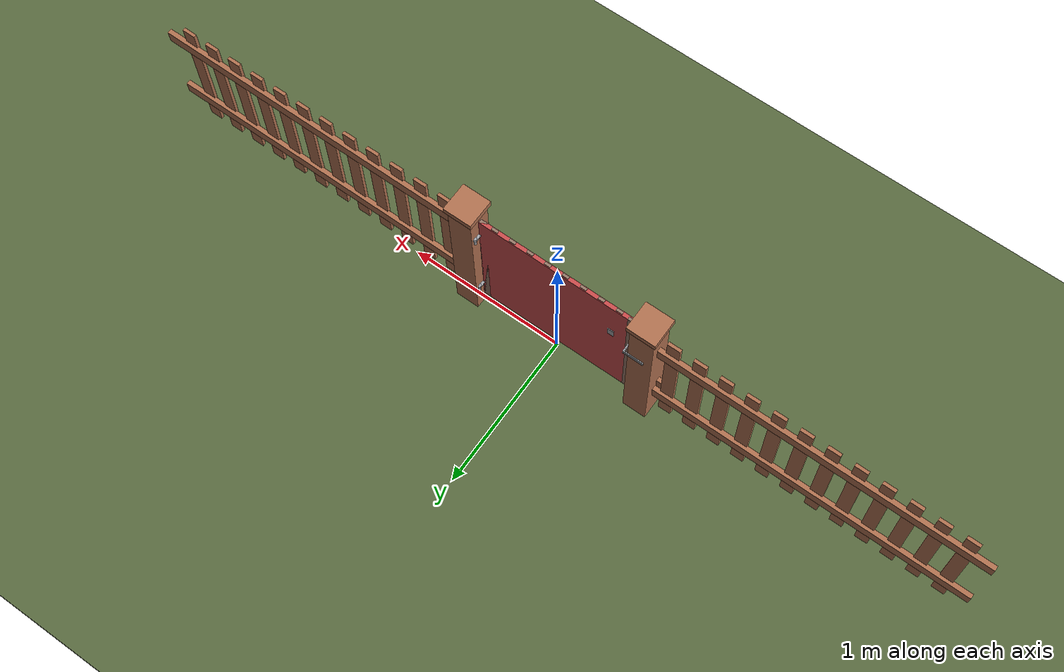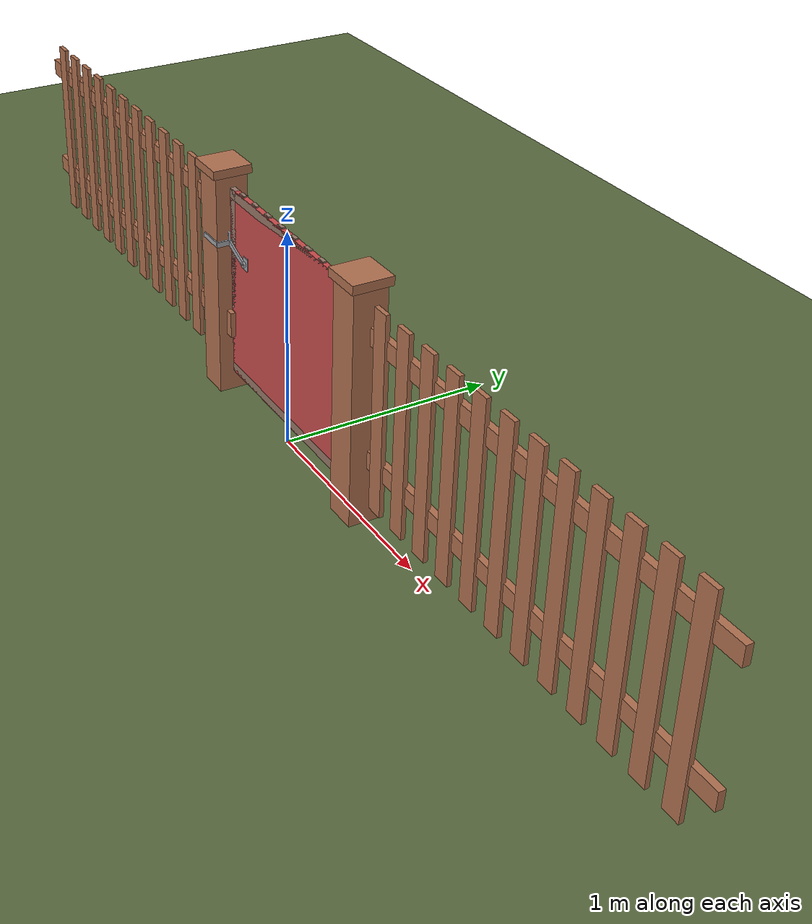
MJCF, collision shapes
<?xml version="1.0" ?>
<mujoco model="db0989_gate_swing_full">
  <compiler angle="radian" meshdir="../../hardware" texturedir="../../textures" autolimits="true" inertiafromgeom="false"/>
  <option timestep="0.002" integrator="implicitfast" cone="elliptic" impratio="10" noslip_iterations="3">
    <flag multiccd="enable"/>
  </option>
  <size memory="16M"/>
  <default>
    <geom condim="4" solref="0.005 1" solimp="0.95 0.99 0.001"/>
    <joint solreflimit="0.005 1" solimplimit="0.95 0.99 0.001"/>
    <tendon solreflimit="0.005 1"/>
    <equality solref="0.002 1"/>
  </default>
  <visual>
    <headlight ambient="0.4 0.4 0.4" diffuse="0.7 0.7 0.7" specular="0.2 0.2 0.2"/>
    <quality shadowsize="4096"/>
    <map znear="0.01" zfar="60"/>
  </visual>
  <asset>
    <mesh name="strap_hinge_78d1bbb966" file="strap_hinge_78d1bbb966.obj"/>
    <material name="mat_floor" rgba="0.35 0.42 0.25 1" specular="0.2" shininess="0.15" reflectance="0"/>
    <material name="mat_wall" rgba="0.78 0.76 0.7 1" specular="0.2" shininess="0.1" reflectance="0"/>
    <material name="mat_leaf" rgba="0.6 0.475 0.41 1" specular="0.2" shininess="0.4" reflectance="0"/>
    <material name="mat_hinge" rgba="0.65 0.66 0.68 1" specular="0.74" shininess="0.5" reflectance="0.36"/>
    <material name="mat_op_steel_galvanized" rgba="0.65 0.66 0.68 1" specular="0.74" shininess="0.5" reflectance="0.36"/>
    <material name="mat_frame" rgba="0.7 0.45 0.32 1" specular="0.2" shininess="0.4" reflectance="0"/>
    <material name="mat_fence" rgba="0.7 0.45 0.32 1" specular="0.2" shininess="0.4" reflectance="0"/>
    <texture name="skybox" type="skybox" builtin="gradient" rgb1="0.6 0.7 0.85" rgb2="0.9 0.92 0.95" width="256" height="256"/>
  </asset>
  <worldbody>
    <light name="sun" pos="1.5 -2.5 4" dir="-0.3 0.5 -0.8" directional="true" diffuse="0.8 0.8 0.8" specular="0.3 0.3 0.3" castshadow="true"/>
    <light name="fill" pos="-1.5 2.5 3" dir="0.3 -0.5 -0.7" directional="true" diffuse="0.35 0.35 0.4" castshadow="false"/>
    <camera name="robot_view" pos="0 -1.875 0.985" xyaxes="1 0 0 0 0.26963 0.962964" fovy="52"/>
    <camera name="far_view" pos="0 1.875 0.985" xyaxes="-1 0 0 0 -0.26963 0.962964" fovy="52"/>
    <camera name="iso" pos="-1.425 -1.575 1.285" xyaxes="0.741536 -0.670913 0 0.242917 0.268487 0.932151" fovy="46"/>
    <camera name="detail_handle" pos="-0.306 -0.8245 1.085" xyaxes="0.97561 0.219512 0 -0.070934 0.315262 0.94635" fovy="38"/>
    <geom name="floor" type="box" size="6 6 0.05" pos="0 0 -0.05" material="mat_floor" group="0" contype="1" conaffinity="1" friction="0.8 0.005 0.0001" density="2400"/>
    <geom name="hinge_pintle_0" type="cylinder" size="0.008 0.02" pos="0.503 0.05 0.224" material="mat_hinge" group="1" contype="0" conaffinity="0" density="7850"/>
    <geom name="hinge_pintle_1" type="cylinder" size="0.008 0.02" pos="0.503 0.05 0.824" material="mat_hinge" group="1" contype="0" conaffinity="0" density="7850"/>
    <geom name="post_hinge" type="box" size="0.075 0.075 0.525" pos="0.581 0 0.525" material="mat_frame" group="0" contype="1" conaffinity="1" friction="0.6 0.005 0.0001" density="350"/>
    <geom name="post_hinge_cap" type="box" size="0.09 0.09 0.02" pos="0.581 0 1.07" material="mat_frame" group="1" contype="0" conaffinity="0" density="350"/>
    <geom name="post_latch" type="box" size="0.075 0.075 0.525" pos="-0.581 0 0.525" material="mat_frame" group="0" contype="1" conaffinity="1" friction="0.6 0.005 0.0001" density="350"/>
    <geom name="post_latch_cap" type="box" size="0.09 0.09 0.02" pos="-0.581 0 1.07" material="mat_frame" group="1" contype="0" conaffinity="0" density="350"/>
    <geom name="gate_stop" type="box" size="0.02 0.012 0.06" pos="-0.486 -0.0245 0.35" material="mat_frame" group="0" contype="1" conaffinity="1" friction="0.6 0.005 0.0001" density="350"/>
    <geom name="fence_picket_l_0" type="box" size="0.04 0.01 0.45" pos="-0.736 0 0.55" material="mat_fence" group="0" contype="1" conaffinity="1" friction="0.6 0.005 0.0001" density="400"/>
    <geom name="fence_picket_l_1" type="box" size="0.04 0.01 0.45" pos="-0.896 0 0.55" material="mat_fence" group="0" contype="1" conaffinity="1" friction="0.6 0.005 0.0001" density="400"/>
    <geom name="fence_picket_l_2" type="box" size="0.04 0.01 0.45" pos="-1.056 0 0.55" material="mat_fence" group="0" contype="1" conaffinity="1" friction="0.6 0.005 0.0001" density="400"/>
    <geom name="fence_picket_l_3" type="box" size="0.04 0.01 0.45" pos="-1.216 0 0.55" material="mat_fence" group="0" contype="1" conaffinity="1" friction="0.6 0.005 0.0001" density="400"/>
    <geom name="fence_picket_l_4" type="box" size="0.04 0.01 0.45" pos="-1.376 0 0.55" material="mat_fence" group="0" contype="1" conaffinity="1" friction="0.6 0.005 0.0001" density="400"/>
    <geom name="fence_picket_l_5" type="box" size="0.04 0.01 0.45" pos="-1.536 0 0.55" material="mat_fence" group="0" contype="1" conaffinity="1" friction="0.6 0.005 0.0001" density="400"/>
    <geom name="fence_picket_l_6" type="box" size="0.04 0.01 0.45" pos="-1.696 0 0.55" material="mat_fence" group="0" contype="1" conaffinity="1" friction="0.6 0.005 0.0001" density="400"/>
    <geom name="fence_picket_l_7" type="box" size="0.04 0.01 0.45" pos="-1.856 0 0.55" material="mat_fence" group="0" contype="1" conaffinity="1" friction="0.6 0.005 0.0001" density="400"/>
    <geom name="fence_picket_l_8" type="box" size="0.04 0.01 0.45" pos="-2.016 0 0.55" material="mat_fence" group="0" contype="1" conaffinity="1" friction="0.6 0.005 0.0001" density="400"/>
    <geom name="fence_picket_l_9" type="box" size="0.04 0.01 0.45" pos="-2.176 0 0.55" material="mat_fence" group="0" contype="1" conaffinity="1" friction="0.6 0.005 0.0001" density="400"/>
    <geom name="fence_picket_l_10" type="box" size="0.04 0.01 0.45" pos="-2.336 0 0.55" material="mat_fence" group="0" contype="1" conaffinity="1" friction="0.6 0.005 0.0001" density="400"/>
    <geom name="fence_picket_l_11" type="box" size="0.04 0.01 0.45" pos="-2.496 0 0.55" material="mat_fence" group="0" contype="1" conaffinity="1" friction="0.6 0.005 0.0001" density="400"/>
    <geom name="fence_rail_l" type="box" size="1 0.015 0.04" pos="-1.656 0.015 0.85" material="mat_fence" group="0" contype="1" conaffinity="1" friction="0.6 0.005 0.0001" density="400"/>
    <geom name="fence_rail_b_l" type="box" size="1 0.015 0.04" pos="-1.656 0.015 0.3" material="mat_fence" group="0" contype="1" conaffinity="1" friction="0.6 0.005 0.0001" density="400"/>
    <geom name="fence_picket_r_0" type="box" size="0.04 0.01 0.45" pos="0.736 0 0.55" material="mat_fence" group="0" contype="1" conaffinity="1" friction="0.6 0.005 0.0001" density="400"/>
    <geom name="fence_picket_r_1" type="box" size="0.04 0.01 0.45" pos="0.896 0 0.55" material="mat_fence" group="0" contype="1" conaffinity="1" friction="0.6 0.005 0.0001" density="400"/>
    <geom name="fence_picket_r_2" type="box" size="0.04 0.01 0.45" pos="1.056 0 0.55" material="mat_fence" group="0" contype="1" conaffinity="1" friction="0.6 0.005 0.0001" density="400"/>
    <geom name="fence_picket_r_3" type="box" size="0.04 0.01 0.45" pos="1.216 0 0.55" material="mat_fence" group="0" contype="1" conaffinity="1" friction="0.6 0.005 0.0001" density="400"/>
    <geom name="fence_picket_r_4" type="box" size="0.04 0.01 0.45" pos="1.376 0 0.55" material="mat_fence" group="0" contype="1" conaffinity="1" friction="0.6 0.005 0.0001" density="400"/>
    <geom name="fence_picket_r_5" type="box" size="0.04 0.01 0.45" pos="1.536 0 0.55" material="mat_fence" group="0" contype="1" conaffinity="1" friction="0.6 0.005 0.0001" density="400"/>
    <geom name="fence_picket_r_6" type="box" size="0.04 0.01 0.45" pos="1.696 0 0.55" material="mat_fence" group="0" contype="1" conaffinity="1" friction="0.6 0.005 0.0001" density="400"/>
    <geom name="fence_picket_r_7" type="box" size="0.04 0.01 0.45" pos="1.856 0 0.55" material="mat_fence" group="0" contype="1" conaffinity="1" friction="0.6 0.005 0.0001" density="400"/>
    <geom name="fence_picket_r_8" type="box" size="0.04 0.01 0.45" pos="2.016 0 0.55" material="mat_fence" group="0" contype="1" conaffinity="1" friction="0.6 0.005 0.0001" density="400"/>
    <geom name="fence_picket_r_9" type="box" size="0.04 0.01 0.45" pos="2.176 0 0.55" material="mat_fence" group="0" contype="1" conaffinity="1" friction="0.6 0.005 0.0001" density="400"/>
    <geom name="fence_picket_r_10" type="box" size="0.04 0.01 0.45" pos="2.336 0 0.55" material="mat_fence" group="0" contype="1" conaffinity="1" friction="0.6 0.005 0.0001" density="400"/>
    <geom name="fence_picket_r_11" type="box" size="0.04 0.01 0.45" pos="2.496 0 0.55" material="mat_fence" group="0" contype="1" conaffinity="1" friction="0.6 0.005 0.0001" density="400"/>
    <geom name="fence_rail_r" type="box" size="1 0.015 0.04" pos="1.656 0.015 0.85" material="mat_fence" group="0" contype="1" conaffinity="1" friction="0.6 0.005 0.0001" density="400"/>
    <geom name="fence_rail_b_r" type="box" size="1 0.015 0.04" pos="1.656 0.015 0.3" material="mat_fence" group="0" contype="1" conaffinity="1" friction="0.6 0.005 0.0001" density="400"/>
    <geom name="hinge_pintle_1_strap_0" type="box" size="0.073 0.0152 0.016" pos="0.5835 0.0412 0.824" material="mat_hinge" group="1" contype="0" conaffinity="0" density="7850"/>
    <geom name="gate_stop_strap_0" type="box" size="0.0955 0.01405 0.048" pos="-0.601 -0.02005 0.35" material="mat_frame" group="1" contype="0" conaffinity="0" density="7850"/>
    <site name="approach_point" pos="0 -1.5 0" quat="1 0 0 0" size="0.05" rgba="0.2 0.9 0.2 0.5" group="4"/>
    <site name="goal_point" pos="0 1.5 0" quat="1 0 0 0" size="0.05" rgba="0.2 0.9 0.2 0.5" group="4"/>
    <site name="door_plane_center" pos="0 0 0.46" quat="1 0 0 0" size="0.02" rgba="0.2 0.9 0.2 0.5" group="4"/>
    <body name="leaf" pos="0.506 0 0">
      <inertial pos="-0.432591 0.004006 0.552659" mass="9.457237" quat="0.706687 -0.70698 0.013955 0.02406" diaginertia="0.67622811 0.877344459 1.551422393"/>
      <joint name="leaf_hinge" type="hinge" axis="0 0 -1" pos="-0.003 0.05 0" limited="true" range="0 1.745329" damping="0.21254" frictionloss="6.768484" armature="0.02"/>
      <geom name="leaf_slab_col" type="box" size="0.5 0.0125 0.45" pos="-0.503 0 0.55" material="mat_leaf" group="3" contype="1" conaffinity="1" rgba="0.8 0.3 0.3 0.25" friction="0.35 0.005 0.0001" density="1"/>
      <geom name="leaf_rail_b" type="box" size="0.5 0.0125 0.0225" pos="-0.503 0 0.1225" material="mat_leaf" group="1" contype="0" conaffinity="0" density="1"/>
      <geom name="leaf_rail_t" type="box" size="0.5 0.0125 0.0225" pos="-0.503 0 0.9775" material="mat_leaf" group="1" contype="0" conaffinity="0" density="1"/>
      <geom name="leaf_stile_h" type="box" size="0.0225 0.0125 0.45" pos="-0.0255 0 0.55" material="mat_leaf" group="1" contype="0" conaffinity="0" density="1"/>
      <geom name="leaf_stile_l" type="box" size="0.0225 0.0125 0.45" pos="-0.9805 0 0.55" material="mat_leaf" group="1" contype="0" conaffinity="0" density="1"/>
      <geom name="leaf_picket_0" type="box" size="0.02 0.00875 0.4365" pos="-0.104875 0 0.57" material="mat_leaf" group="1" contype="0" conaffinity="0" density="1"/>
      <geom name="leaf_picket_1" type="box" size="0.02 0.00875 0.4365" pos="-0.218625 0 0.57" material="mat_leaf" group="1" contype="0" conaffinity="0" density="1"/>
      <geom name="leaf_picket_2" type="box" size="0.02 0.00875 0.4365" pos="-0.332375 0 0.57" material="mat_leaf" group="1" contype="0" conaffinity="0" density="1"/>
      <geom name="leaf_picket_3" type="box" size="0.02 0.00875 0.4365" pos="-0.446125 0 0.57" material="mat_leaf" group="1" contype="0" conaffinity="0" density="1"/>
      <geom name="leaf_picket_4" type="box" size="0.02 0.00875 0.4365" pos="-0.559875 0 0.57" material="mat_leaf" group="1" contype="0" conaffinity="0" density="1"/>
      <geom name="leaf_picket_5" type="box" size="0.02 0.00875 0.4365" pos="-0.673625 0 0.57" material="mat_leaf" group="1" contype="0" conaffinity="0" density="1"/>
      <geom name="leaf_picket_6" type="box" size="0.02 0.00875 0.4365" pos="-0.787375 0 0.57" material="mat_leaf" group="1" contype="0" conaffinity="0" density="1"/>
      <geom name="leaf_picket_7" type="box" size="0.02 0.00875 0.4365" pos="-0.901125 0 0.57" material="mat_leaf" group="1" contype="0" conaffinity="0" density="1"/>
      <geom name="hinge_strap_0" type="mesh" mesh="strap_hinge_78d1bbb966" pos="-0.003 0.0155 0.25" quat="0 0 0 1" material="mat_hinge" group="1" contype="0" conaffinity="0" density="7850"/>
      <geom name="hinge_strap_eye_0" type="cylinder" size="0.011 0.012" pos="-0.003 0.05 0.25" material="mat_hinge" group="1" contype="0" conaffinity="0" density="7850"/>
      <geom name="hinge_strap_neck_0" type="box" size="0.012 0.02125 0.006" pos="-0.003 0.03275 0.25" material="mat_hinge" group="1" contype="0" conaffinity="0" density="7850"/>
      <geom name="hinge_strap_1" type="mesh" mesh="strap_hinge_78d1bbb966" pos="-0.003 0.0155 0.85" quat="0 0 0 1" material="mat_hinge" group="1" contype="0" conaffinity="0" density="7850"/>
      <geom name="hinge_strap_eye_1" type="cylinder" size="0.011 0.012" pos="-0.003 0.05 0.85" material="mat_hinge" group="1" contype="0" conaffinity="0" density="7850"/>
      <geom name="hinge_strap_neck_1" type="box" size="0.012 0.02125 0.006" pos="-0.003 0.03275 0.85" material="mat_hinge" group="1" contype="0" conaffinity="0" density="7850"/>
      <geom name="leaf_fork_strap_n" type="box" size="0.02 0.002 0.03" pos="-0.863 -0.0145 0.7" material="mat_op_steel_galvanized" group="1" contype="0" conaffinity="0" density="7800"/>
      <geom name="leaf_fork_strap_p" type="box" size="0.02 0.002 0.03" pos="-0.863 0.0145 0.7" material="mat_op_steel_galvanized" group="1" contype="0" conaffinity="0" density="7800"/>
      <geom name="leaf_fork_pin" type="cylinder" size="0.005 0.0245" pos="-0.863 -0.008 0.7" quat="0.707107 -0.707107 0 0" material="mat_op_steel_galvanized" group="1" contype="0" conaffinity="0" density="7800"/>
      <site name="leaf_edge_mid" pos="-1.003 0 0.45" quat="1 0 0 0" size="0.02" rgba="0.2 0.9 0.2 0.5" group="4"/>
      <body name="leaf_fork" pos="-0.863 0 0.7">
        <inertial pos="-0.126594 -0.008623 0.042319" mass="0.267763" quat="0.971199 -0.024043 0.108413 -0.210811" diaginertia="0.000863922 0.001265656 0.002030125"/>
        <joint name="leaf_fork_hinge" type="hinge" axis="0 1 0" limited="true" range="0 1.2" damping="0.049205" frictionloss="0.008804" armature="0.0001"/>
        <geom name="leaf_fork_arm" type="box" size="0.069176 0.004 0.012" pos="-0.0645 -0.0245 0.025" quat="0.982958 0 0.183833 0" material="mat_op_steel_galvanized" group="0" contype="1" conaffinity="1" friction="0.6 0.005 0.0001" density="2500"/>
        <geom name="leaf_fork_eye" type="cylinder" size="0.014 0.005" pos="0 -0.0245 0" quat="0.707107 -0.707107 0 0" material="mat_op_steel_galvanized" group="1" contype="0" conaffinity="0" density="2500"/>
        <geom name="leaf_fork_tine_n" type="box" size="0.0625 0.003 0.012" pos="-0.1915 -0.084 0.05" material="mat_op_steel_galvanized" group="0" contype="1" conaffinity="1" friction="0.6 0.005 0.0001" density="2500"/>
        <geom name="leaf_fork_tine_p" type="box" size="0.0625 0.003 0.012" pos="-0.1915 0.084 0.05" material="mat_op_steel_galvanized" group="0" contype="1" conaffinity="1" friction="0.6 0.005 0.0001" density="2500"/>
        <geom name="leaf_fork_bridge" type="box" size="0.004 0.087 0.012" pos="-0.129 0 0.05" material="mat_op_steel_galvanized" group="0" contype="1" conaffinity="1" friction="0.6 0.005 0.0001" density="2500"/>
        <geom name="leaf_fork_handle" type="capsule" size="0.006 0.018" pos="-0.129 -0.0245 0.08" material="mat_op_steel_galvanized" group="0" contype="1" conaffinity="1" friction="0.7 0.01 0.0001" density="2500"/>
        <site name="leaf_fork_grip" pos="-0.129 -0.0245 0.105" quat="1 0 0 0" size="0.012" rgba="0.2 0.9 0.2 0.5" group="4"/>
      </body>
    </body>
  </worldbody>
  <sensor>
    <jointpos name="leaf_hinge_pos" joint="leaf_hinge"/>
    <jointvel name="leaf_hinge_vel" joint="leaf_hinge"/>
    <jointpos name="leaf_fork_hinge_pos" joint="leaf_fork_hinge"/>
    <jointvel name="leaf_fork_hinge_vel" joint="leaf_fork_hinge"/>
  </sensor>
</mujoco>
